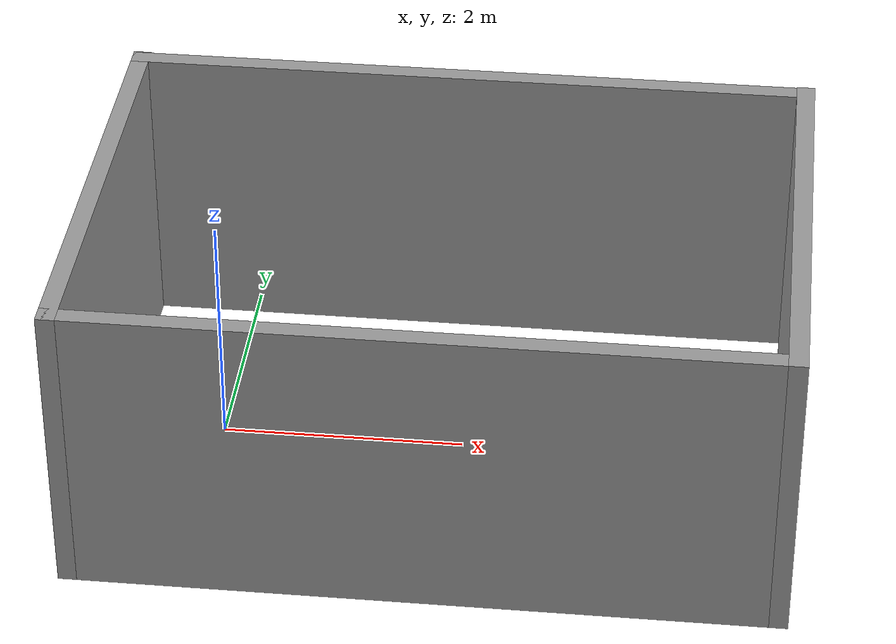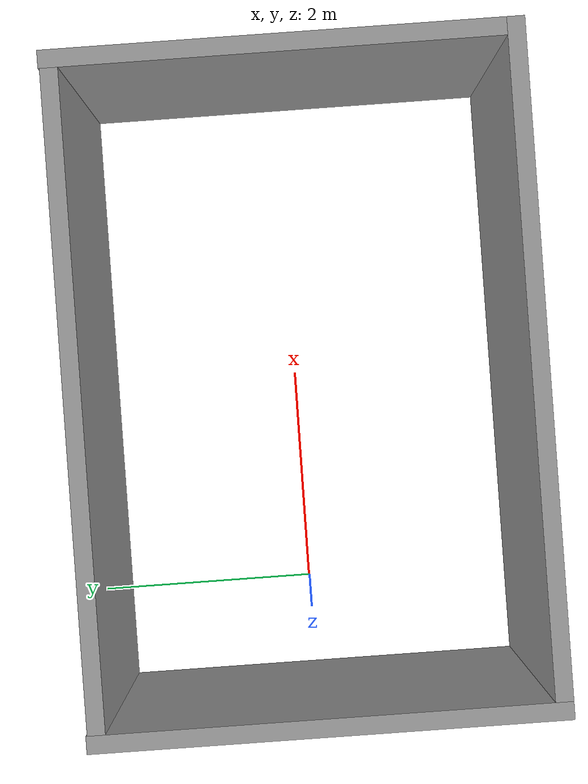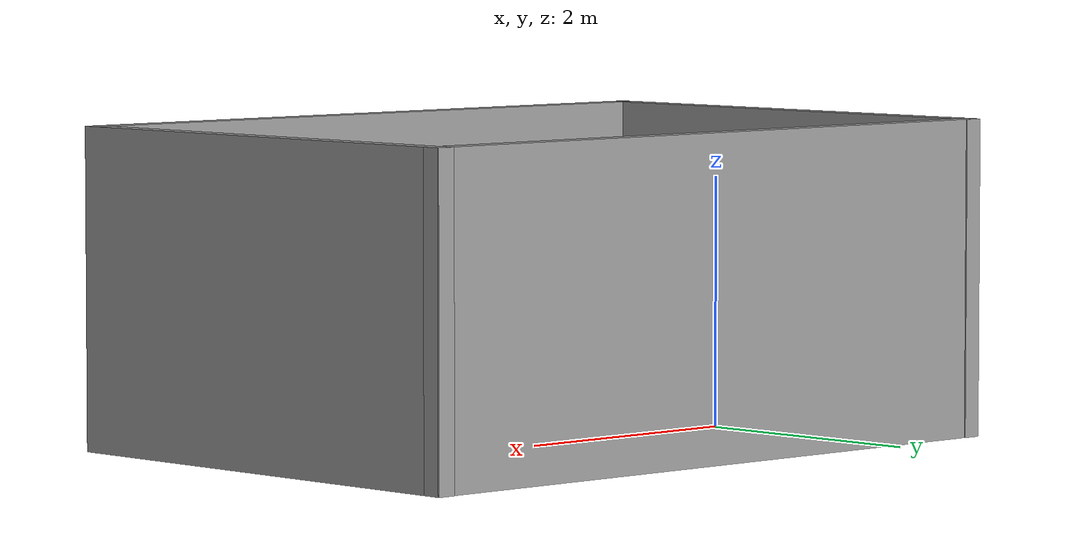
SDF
<?xml version='1.0'?>
<sdf version='1.6'>
  <model name='cage'>
    <pose frame=''>1.87761 -0.081899 0 0 -0 0</pose>
    <link name='Wall_11'>
      <collision name='Wall_11_Collision'>
        <geometry>
          <box>
            <size>3.98735 0.15 2.5</size>
          </box>
        </geometry>
        <pose frame=''>0 0 1.25 0 -0 0</pose>
      </collision>
      <visual name='Wall_11_Visual'>
        <pose frame=''>0 0 1.25 0 -0 0</pose>
        <geometry>
          <box>
            <size>3.98735 0.15 2.5</size>
          </box>
        </geometry>
        <material>
          <script>
            <uri>file://media/materials/scripts/gazebo.material</uri>
            <name>Gazebo/Grey</name>
          </script>
          <ambient>1 1 1 1</ambient>
        </material>
        <meta>
          <layer>0</layer>
        </meta>
      </visual>
      <pose frame=''>-2.8 0 0 0 -0 -1.5708</pose>
    </link>
    <link name='Wall_12'>
      <collision name='Wall_12_Collision'>
        <geometry>
          <box>
            <size>5.75 0.15 2.5</size>
          </box>
        </geometry>
        <pose frame=''>0 0 1.25 0 -0 0</pose>
      </collision>
      <visual name='Wall_12_Visual'>
        <pose frame=''>0 0 1.25 0 -0 0</pose>
        <geometry>
          <box>
            <size>5.75 0.15 2.5</size>
          </box>
        </geometry>
        <material>
          <script>
            <uri>file://media/materials/scripts/gazebo.material</uri>
            <name>Gazebo/Grey</name>
          </script>
          <ambient>1 1 1 1</ambient>
        </material>
        <meta>
          <layer>0</layer>
        </meta>
      </visual>
      <pose frame=''>0 -1.91867 0 0 -0 0</pose>
    </link>
    <link name='Wall_13'>
      <collision name='Wall_13_Collision'>
        <geometry>
          <box>
            <size>3.98735 0.15 2.5</size>
          </box>
        </geometry>
        <pose frame=''>0 0 1.25 0 -0 0</pose>
      </collision>
      <visual name='Wall_13_Visual'>
        <pose frame=''>0 0 1.25 0 -0 0</pose>
        <geometry>
          <box>
            <size>3.98735 0.15 2.5</size>
          </box>
        </geometry>
        <material>
          <script>
            <uri>file://media/materials/scripts/gazebo.material</uri>
            <name>Gazebo/Grey</name>
          </script>
          <ambient>1 1 1 1</ambient>
        </material>
        <meta>
          <layer>0</layer>
        </meta>
      </visual>
      <pose frame=''>2.8 0 0 0 -0 1.5708</pose>
    </link>
    <link name='Wall_14'>
      <collision name='Wall_14_Collision'>
        <geometry>
          <box>
            <size>5.75 0.15 2.5</size>
          </box>
        </geometry>
        <pose frame=''>0 0 1.25 0 -0 0</pose>
      </collision>
      <visual name='Wall_14_Visual'>
        <pose frame=''>0 0 1.25 0 -0 0</pose>
        <geometry>
          <box>
            <size>5.75 0.15 2.5</size>
          </box>
        </geometry>
        <material>
          <script>
            <uri>file://media/materials/scripts/gazebo.material</uri>
            <name>Gazebo/Grey</name>
          </script>
          <ambient>1 1 1 1</ambient>
        </material>
        <meta>
          <layer>0</layer>
        </meta>
      </visual>
      <pose frame=''>0 1.90717 0 0 -0 3.14159</pose>
    </link>
    <static>1</static>
  </model>
</sdf>
